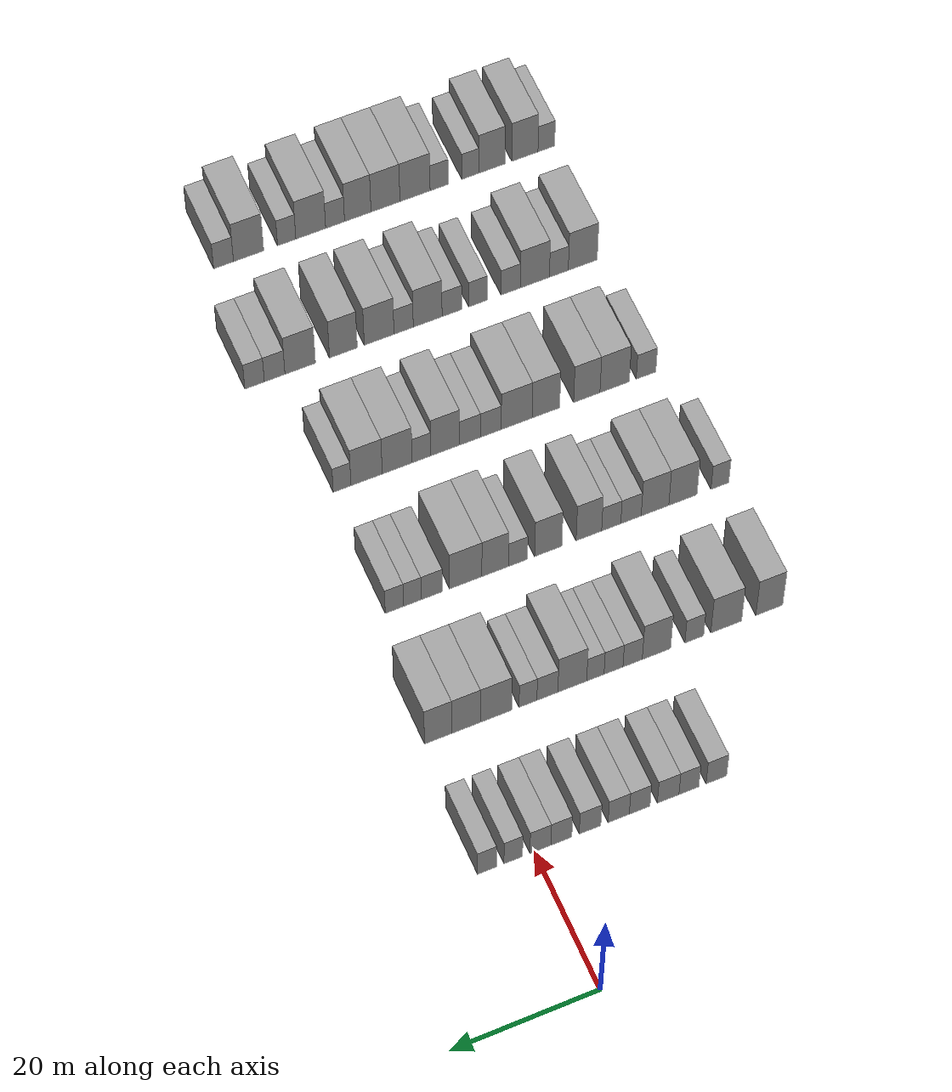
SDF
<sdf version="1.6">
 <world name="default">
  <model name="building_75">
   <static>1</static>
   <pose>25.0000 -24.7141 0 0.000000 0.000000 0.000000</pose>
   <link name="link">
    <pose>0 0 3.00 0 0 0</pose>
    <collision name="collision"><geometry><box><size>10.0000 2.8267 6.0000</size></box></geometry></collision>
    <visual name="visual">
     <cast_shadows>0</cast_shadows>
     <geometry><box><size>10.0000 2.8267 6.0000</size></box></geometry>
     <material>
      <script>
       <uri>model://grey_wall/materials/scripts</uri>
       <uri>model://grey_wall/materials/textures</uri>
       <name>vrc/grey_wall</name>
      </script>
     </material>
    </visual>
   </link>
  </model>
  <model name="building_76">
   <static>1</static>
   <pose>25.0000 -20.9443 0 0.000000 0.000000 0.000000</pose>
   <link name="link">
    <pose>0 0 3.00 0 0 0</pose>
    <collision name="collision"><geometry><box><size>10.0000 2.7129 6.0000</size></box></geometry></collision>
    <visual name="visual">
     <cast_shadows>0</cast_shadows>
     <geometry><box><size>10.0000 2.7129 6.0000</size></box></geometry>
     <material>
      <script>
       <uri>model://grey_wall/materials/scripts</uri>
       <uri>model://grey_wall/materials/textures</uri>
       <name>vrc/grey_wall</name>
      </script>
     </material>
    </visual>
   </link>
  </model>
  <model name="building_77">
   <static>1</static>
   <pose>25.0000 -18.1075 0 0.000000 0.000000 0.000000</pose>
   <link name="link">
    <pose>0 0 3.00 0 0 0</pose>
    <collision name="collision"><geometry><box><size>10.0000 2.9607 6.0000</size></box></geometry></collision>
    <visual name="visual">
     <cast_shadows>0</cast_shadows>
     <geometry><box><size>10.0000 2.9607 6.0000</size></box></geometry>
     <material>
      <script>
       <uri>model://grey_wall/materials/scripts</uri>
       <uri>model://grey_wall/materials/textures</uri>
       <name>vrc/grey_wall</name>
      </script>
     </material>
    </visual>
   </link>
  </model>
  <model name="building_78">
   <static>1</static>
   <pose>25.0000 -14.2135 0 0.000000 0.000000 0.000000</pose>
   <link name="link">
    <pose>0 0 3.00 0 0 0</pose>
    <collision name="collision"><geometry><box><size>10.0000 2.8274 6.0000</size></box></geometry></collision>
    <visual name="visual">
     <cast_shadows>0</cast_shadows>
     <geometry><box><size>10.0000 2.8274 6.0000</size></box></geometry>
     <material>
      <script>
       <uri>model://grey_wall/materials/scripts</uri>
       <uri>model://grey_wall/materials/textures</uri>
       <name>vrc/grey_wall</name>
      </script>
     </material>
    </visual>
   </link>
  </model>
  <model name="building_79">
   <static>1</static>
   <pose>25.0000 -11.3619 0 0.000000 0.000000 0.000000</pose>
   <link name="link">
    <pose>0 0 3.00 0 0 0</pose>
    <collision name="collision"><geometry><box><size>10.0000 2.8756 6.0000</size></box></geometry></collision>
    <visual name="visual">
     <cast_shadows>0</cast_shadows>
     <geometry><box><size>10.0000 2.8756 6.0000</size></box></geometry>
     <material>
      <script>
       <uri>model://grey_wall/materials/scripts</uri>
       <uri>model://grey_wall/materials/textures</uri>
       <name>vrc/grey_wall</name>
      </script>
     </material>
    </visual>
   </link>
  </model>
  <model name="building_80">
   <static>1</static>
   <pose>25.0000 -7.4598 0 0.000000 0.000000 0.000000</pose>
   <link name="link">
    <pose>0 0 3.00 0 0 0</pose>
    <collision name="collision"><geometry><box><size>10.0000 2.9285 6.0000</size></box></geometry></collision>
    <visual name="visual">
     <cast_shadows>0</cast_shadows>
     <geometry><box><size>10.0000 2.9285 6.0000</size></box></geometry>
     <material>
      <script>
       <uri>model://grey_wall/materials/scripts</uri>
       <uri>model://grey_wall/materials/textures</uri>
       <name>vrc/grey_wall</name>
      </script>
     </material>
    </visual>
   </link>
  </model>
  <model name="building_81">
   <static>1</static>
   <pose>25.0000 -3.5816 0 0.000000 0.000000 0.000000</pose>
   <link name="link">
    <pose>0 0 3.00 0 0 0</pose>
    <collision name="collision"><geometry><box><size>10.0000 2.8280 6.0000</size></box></geometry></collision>
    <visual name="visual">
     <cast_shadows>0</cast_shadows>
     <geometry><box><size>10.0000 2.8280 6.0000</size></box></geometry>
     <material>
      <script>
       <uri>model://grey_wall/materials/scripts</uri>
       <uri>model://grey_wall/materials/textures</uri>
       <name>vrc/grey_wall</name>
      </script>
     </material>
    </visual>
   </link>
  </model>
  <model name="building_82">
   <static>1</static>
   <pose>25.0000 -0.7531 0 0.000000 0.000000 0.000000</pose>
   <link name="link">
    <pose>0 0 3.00 0 0 0</pose>
    <collision name="collision"><geometry><box><size>10.0000 2.8289 6.0000</size></box></geometry></collision>
    <visual name="visual">
     <cast_shadows>0</cast_shadows>
     <geometry><box><size>10.0000 2.8289 6.0000</size></box></geometry>
     <material>
      <script>
       <uri>model://grey_wall/materials/scripts</uri>
       <uri>model://grey_wall/materials/textures</uri>
       <name>vrc/grey_wall</name>
      </script>
     </material>
    </visual>
   </link>
  </model>
  <model name="building_83">
   <static>1</static>
   <pose>25.0000 2.9160 0 0.000000 0.000000 0.000000</pose>
   <link name="link">
    <pose>0 0 3.00 0 0 0</pose>
    <collision name="collision"><geometry><box><size>10.0000 2.5093 6.0000</size></box></geometry></collision>
    <visual name="visual">
     <cast_shadows>0</cast_shadows>
     <geometry><box><size>10.0000 2.5093 6.0000</size></box></geometry>
     <material>
      <script>
       <uri>model://grey_wall/materials/scripts</uri>
       <uri>model://grey_wall/materials/textures</uri>
       <name>vrc/grey_wall</name>
      </script>
     </material>
    </visual>
   </link>
  </model>
  <model name="building_84">
   <static>1</static>
   <pose>25.0000 6.4420 0 0.000000 0.000000 0.000000</pose>
   <link name="link">
    <pose>0 0 3.00 0 0 0</pose>
    <collision name="collision"><geometry><box><size>10.0000 2.5426 6.0000</size></box></geometry></collision>
    <visual name="visual">
     <cast_shadows>0</cast_shadows>
     <geometry><box><size>10.0000 2.5426 6.0000</size></box></geometry>
     <material>
      <script>
       <uri>model://grey_wall/materials/scripts</uri>
       <uri>model://grey_wall/materials/textures</uri>
       <name>vrc/grey_wall</name>
      </script>
     </material>
    </visual>
   </link>
  </model>
  <model name="building_251">
   <static>1</static>
   <pose>44.0000 -40.9988 0 0.000000 0.000000 0.000000</pose>
   <link name="link">
    <pose>0 0 4.50 0 0 0</pose>
    <collision name="collision"><geometry><box><size>10.0000 3.7809 9.0000</size></box></geometry></collision>
    <visual name="visual">
     <cast_shadows>0</cast_shadows>
     <geometry><box><size>10.0000 3.7809 9.0000</size></box></geometry>
     <material>
      <script>
       <uri>model://grey_wall/materials/scripts</uri>
       <uri>model://grey_wall/materials/textures</uri>
       <name>vrc/grey_wall</name>
      </script>
     </material>
    </visual>
   </link>
  </model>
  <model name="building_252">
   <static>1</static>
   <pose>44.0000 -34.9463 0 0.000000 0.000000 0.000000</pose>
   <link name="link">
    <pose>0 0 4.50 0 0 0</pose>
    <collision name="collision"><geometry><box><size>10.0000 4.3242 9.0000</size></box></geometry></collision>
    <visual name="visual">
     <cast_shadows>0</cast_shadows>
     <geometry><box><size>10.0000 4.3242 9.0000</size></box></geometry>
     <material>
      <script>
       <uri>model://grey_wall/materials/scripts</uri>
       <uri>model://grey_wall/materials/textures</uri>
       <name>vrc/grey_wall</name>
      </script>
     </material>
    </visual>
   </link>
  </model>
  <model name="building_253">
   <static>1</static>
   <pose>44.0000 -30.4760 0 0.000000 0.000000 0.000000</pose>
   <link name="link">
    <pose>0 0 3.00 0 0 0</pose>
    <collision name="collision"><geometry><box><size>10.0000 2.6163 6.0000</size></box></geometry></collision>
    <visual name="visual">
     <cast_shadows>0</cast_shadows>
     <geometry><box><size>10.0000 2.6163 6.0000</size></box></geometry>
     <material>
      <script>
       <uri>model://grey_wall/materials/scripts</uri>
       <uri>model://grey_wall/materials/textures</uri>
       <name>vrc/grey_wall</name>
      </script>
     </material>
    </visual>
   </link>
  </model>
  <model name="building_254">
   <static>1</static>
   <pose>44.0000 -25.1938 0 0.000000 0.000000 0.000000</pose>
   <link name="link">
    <pose>0 0 4.50 0 0 0</pose>
    <collision name="collision"><geometry><box><size>10.0000 3.9481 9.0000</size></box></geometry></collision>
    <visual name="visual">
     <cast_shadows>0</cast_shadows>
     <geometry><box><size>10.0000 3.9481 9.0000</size></box></geometry>
     <material>
      <script>
       <uri>model://grey_wall/materials/scripts</uri>
       <uri>model://grey_wall/materials/textures</uri>
       <name>vrc/grey_wall</name>
      </script>
     </material>
    </visual>
   </link>
  </model>
  <model name="building_255">
   <static>1</static>
   <pose>44.0000 -21.8793 0 0.000000 0.000000 0.000000</pose>
   <link name="link">
    <pose>0 0 3.00 0 0 0</pose>
    <collision name="collision"><geometry><box><size>10.0000 2.6810 6.0000</size></box></geometry></collision>
    <visual name="visual">
     <cast_shadows>0</cast_shadows>
     <geometry><box><size>10.0000 2.6810 6.0000</size></box></geometry>
     <material>
      <script>
       <uri>model://grey_wall/materials/scripts</uri>
       <uri>model://grey_wall/materials/textures</uri>
       <name>vrc/grey_wall</name>
      </script>
     </material>
    </visual>
   </link>
  </model>
  <model name="building_256">
   <static>1</static>
   <pose>44.0000 -19.2261 0 0.000000 0.000000 0.000000</pose>
   <link name="link">
    <pose>0 0 3.00 0 0 0</pose>
    <collision name="collision"><geometry><box><size>10.0000 2.6255 6.0000</size></box></geometry></collision>
    <visual name="visual">
     <cast_shadows>0</cast_shadows>
     <geometry><box><size>10.0000 2.6255 6.0000</size></box></geometry>
     <material>
      <script>
       <uri>model://grey_wall/materials/scripts</uri>
       <uri>model://grey_wall/materials/textures</uri>
       <name>vrc/grey_wall</name>
      </script>
     </material>
    </visual>
   </link>
  </model>
  <model name="building_257">
   <static>1</static>
   <pose>44.0000 -16.7119 0 0.000000 0.000000 0.000000</pose>
   <link name="link">
    <pose>0 0 3.00 0 0 0</pose>
    <collision name="collision"><geometry><box><size>10.0000 2.4028 6.0000</size></box></geometry></collision>
    <visual name="visual">
     <cast_shadows>0</cast_shadows>
     <geometry><box><size>10.0000 2.4028 6.0000</size></box></geometry>
     <material>
      <script>
       <uri>model://grey_wall/materials/scripts</uri>
       <uri>model://grey_wall/materials/textures</uri>
       <name>vrc/grey_wall</name>
      </script>
     </material>
    </visual>
   </link>
  </model>
  <model name="building_258">
   <static>1</static>
   <pose>44.0000 -13.5210 0 0.000000 0.000000 0.000000</pose>
   <link name="link">
    <pose>0 0 4.50 0 0 0</pose>
    <collision name="collision"><geometry><box><size>10.0000 3.9791 9.0000</size></box></geometry></collision>
    <visual name="visual">
     <cast_shadows>0</cast_shadows>
     <geometry><box><size>10.0000 3.9791 9.0000</size></box></geometry>
     <material>
      <script>
       <uri>model://grey_wall/materials/scripts</uri>
       <uri>model://grey_wall/materials/textures</uri>
       <name>vrc/grey_wall</name>
      </script>
     </material>
    </visual>
   </link>
  </model>
  <model name="building_259">
   <static>1</static>
   <pose>44.0000 -10.0877 0 0.000000 0.000000 0.000000</pose>
   <link name="link">
    <pose>0 0 3.00 0 0 0</pose>
    <collision name="collision"><geometry><box><size>10.0000 2.8873 6.0000</size></box></geometry></collision>
    <visual name="visual">
     <cast_shadows>0</cast_shadows>
     <geometry><box><size>10.0000 2.8873 6.0000</size></box></geometry>
     <material>
      <script>
       <uri>model://grey_wall/materials/scripts</uri>
       <uri>model://grey_wall/materials/textures</uri>
       <name>vrc/grey_wall</name>
      </script>
     </material>
    </visual>
   </link>
  </model>
  <model name="building_260">
   <static>1</static>
   <pose>44.0000 -7.4192 0 0.000000 0.000000 0.000000</pose>
   <link name="link">
    <pose>0 0 3.00 0 0 0</pose>
    <collision name="collision"><geometry><box><size>10.0000 2.4499 6.0000</size></box></geometry></collision>
    <visual name="visual">
     <cast_shadows>0</cast_shadows>
     <geometry><box><size>10.0000 2.4499 6.0000</size></box></geometry>
     <material>
      <script>
       <uri>model://grey_wall/materials/scripts</uri>
       <uri>model://grey_wall/materials/textures</uri>
       <name>vrc/grey_wall</name>
      </script>
     </material>
    </visual>
   </link>
  </model>
  <model name="building_261">
   <static>1</static>
   <pose>44.0000 -3.0409 0 0.000000 0.000000 0.000000</pose>
   <link name="link">
    <pose>0 0 4.50 0 0 0</pose>
    <collision name="collision"><geometry><box><size>10.0000 4.3067 9.0000</size></box></geometry></collision>
    <visual name="visual">
     <cast_shadows>0</cast_shadows>
     <geometry><box><size>10.0000 4.3067 9.0000</size></box></geometry>
     <material>
      <script>
       <uri>model://grey_wall/materials/scripts</uri>
       <uri>model://grey_wall/materials/textures</uri>
       <name>vrc/grey_wall</name>
      </script>
     </material>
    </visual>
   </link>
  </model>
  <model name="building_262">
   <static>1</static>
   <pose>44.0000 1.0598 0 0.000000 0.000000 0.000000</pose>
   <link name="link">
    <pose>0 0 4.50 0 0 0</pose>
    <collision name="collision"><geometry><box><size>10.0000 3.8946 9.0000</size></box></geometry></collision>
    <visual name="visual">
     <cast_shadows>0</cast_shadows>
     <geometry><box><size>10.0000 3.8946 9.0000</size></box></geometry>
     <material>
      <script>
       <uri>model://grey_wall/materials/scripts</uri>
       <uri>model://grey_wall/materials/textures</uri>
       <name>vrc/grey_wall</name>
      </script>
     </material>
    </visual>
   </link>
  </model>
  <model name="building_263">
   <static>1</static>
   <pose>44.0000 4.8701 0 0.000000 0.000000 0.000000</pose>
   <link name="link">
    <pose>0 0 4.50 0 0 0</pose>
    <collision name="collision"><geometry><box><size>10.0000 3.7260 9.0000</size></box></geometry></collision>
    <visual name="visual">
     <cast_shadows>0</cast_shadows>
     <geometry><box><size>10.0000 3.7260 9.0000</size></box></geometry>
     <material>
      <script>
       <uri>model://grey_wall/materials/scripts</uri>
       <uri>model://grey_wall/materials/textures</uri>
       <name>vrc/grey_wall</name>
      </script>
     </material>
    </visual>
   </link>
  </model>
  <model name="building_420">
   <static>1</static>
   <pose>63.0000 -42.9195 0 0.000000 0.000000 0.000000</pose>
   <link name="link">
    <pose>0 0 3.00 0 0 0</pose>
    <collision name="collision"><geometry><box><size>10.0000 2.5342 6.0000</size></box></geometry></collision>
    <visual name="visual">
     <cast_shadows>0</cast_shadows>
     <geometry><box><size>10.0000 2.5342 6.0000</size></box></geometry>
     <material>
      <script>
       <uri>model://grey_wall/materials/scripts</uri>
       <uri>model://grey_wall/materials/textures</uri>
       <name>vrc/grey_wall</name>
      </script>
     </material>
    </visual>
   </link>
  </model>
  <model name="building_421">
   <static>1</static>
   <pose>63.0000 -37.6468 0 0.000000 0.000000 0.000000</pose>
   <link name="link">
    <pose>0 0 4.50 0 0 0</pose>
    <collision name="collision"><geometry><box><size>10.0000 4.0112 9.0000</size></box></geometry></collision>
    <visual name="visual">
     <cast_shadows>0</cast_shadows>
     <geometry><box><size>10.0000 4.0112 9.0000</size></box></geometry>
     <material>
      <script>
       <uri>model://grey_wall/materials/scripts</uri>
       <uri>model://grey_wall/materials/textures</uri>
       <name>vrc/grey_wall</name>
      </script>
     </material>
    </visual>
   </link>
  </model>
  <model name="building_422">
   <static>1</static>
   <pose>63.0000 -33.6801 0 0.000000 0.000000 0.000000</pose>
   <link name="link">
    <pose>0 0 4.50 0 0 0</pose>
    <collision name="collision"><geometry><box><size>10.0000 3.9223 9.0000</size></box></geometry></collision>
    <visual name="visual">
     <cast_shadows>0</cast_shadows>
     <geometry><box><size>10.0000 3.9223 9.0000</size></box></geometry>
     <material>
      <script>
       <uri>model://grey_wall/materials/scripts</uri>
       <uri>model://grey_wall/materials/textures</uri>
       <name>vrc/grey_wall</name>
      </script>
     </material>
    </visual>
   </link>
  </model>
  <model name="building_423">
   <static>1</static>
   <pose>63.0000 -30.2745 0 0.000000 0.000000 0.000000</pose>
   <link name="link">
    <pose>0 0 3.00 0 0 0</pose>
    <collision name="collision"><geometry><box><size>10.0000 2.8890 6.0000</size></box></geometry></collision>
    <visual name="visual">
     <cast_shadows>0</cast_shadows>
     <geometry><box><size>10.0000 2.8890 6.0000</size></box></geometry>
     <material>
      <script>
       <uri>model://grey_wall/materials/scripts</uri>
       <uri>model://grey_wall/materials/textures</uri>
       <name>vrc/grey_wall</name>
      </script>
     </material>
    </visual>
   </link>
  </model>
  <model name="building_424">
   <static>1</static>
   <pose>63.0000 -27.4767 0 0.000000 0.000000 0.000000</pose>
   <link name="link">
    <pose>0 0 3.00 0 0 0</pose>
    <collision name="collision"><geometry><box><size>10.0000 2.7066 6.0000</size></box></geometry></collision>
    <visual name="visual">
     <cast_shadows>0</cast_shadows>
     <geometry><box><size>10.0000 2.7066 6.0000</size></box></geometry>
     <material>
      <script>
       <uri>model://grey_wall/materials/scripts</uri>
       <uri>model://grey_wall/materials/textures</uri>
       <name>vrc/grey_wall</name>
      </script>
     </material>
    </visual>
   </link>
  </model>
  <model name="building_425">
   <static>1</static>
   <pose>63.0000 -24.3222 0 0.000000 0.000000 0.000000</pose>
   <link name="link">
    <pose>0 0 4.50 0 0 0</pose>
    <collision name="collision"><geometry><box><size>10.0000 3.6024 9.0000</size></box></geometry></collision>
    <visual name="visual">
     <cast_shadows>0</cast_shadows>
     <geometry><box><size>10.0000 3.6024 9.0000</size></box></geometry>
     <material>
      <script>
       <uri>model://grey_wall/materials/scripts</uri>
       <uri>model://grey_wall/materials/textures</uri>
       <name>vrc/grey_wall</name>
      </script>
     </material>
    </visual>
   </link>
  </model>
  <model name="building_426">
   <static>1</static>
   <pose>63.0000 -18.6129 0 0.000000 0.000000 0.000000</pose>
   <link name="link">
    <pose>0 0 4.50 0 0 0</pose>
    <collision name="collision"><geometry><box><size>10.0000 3.8162 9.0000</size></box></geometry></collision>
    <visual name="visual">
     <cast_shadows>0</cast_shadows>
     <geometry><box><size>10.0000 3.8162 9.0000</size></box></geometry>
     <material>
      <script>
       <uri>model://grey_wall/materials/scripts</uri>
       <uri>model://grey_wall/materials/textures</uri>
       <name>vrc/grey_wall</name>
      </script>
     </material>
    </visual>
   </link>
  </model>
  <model name="building_427">
   <static>1</static>
   <pose>63.0000 -14.3677 0 0.000000 0.000000 0.000000</pose>
   <link name="link">
    <pose>0 0 3.00 0 0 0</pose>
    <collision name="collision"><geometry><box><size>10.0000 2.6742 6.0000</size></box></geometry></collision>
    <visual name="visual">
     <cast_shadows>0</cast_shadows>
     <geometry><box><size>10.0000 2.6742 6.0000</size></box></geometry>
     <material>
      <script>
       <uri>model://grey_wall/materials/scripts</uri>
       <uri>model://grey_wall/materials/textures</uri>
       <name>vrc/grey_wall</name>
      </script>
     </material>
    </visual>
   </link>
  </model>
  <model name="building_428">
   <static>1</static>
   <pose>63.0000 -11.1765 0 0.000000 0.000000 0.000000</pose>
   <link name="link">
    <pose>0 0 4.50 0 0 0</pose>
    <collision name="collision"><geometry><box><size>10.0000 3.7081 9.0000</size></box></geometry></collision>
    <visual name="visual">
     <cast_shadows>0</cast_shadows>
     <geometry><box><size>10.0000 3.7081 9.0000</size></box></geometry>
     <material>
      <script>
       <uri>model://grey_wall/materials/scripts</uri>
       <uri>model://grey_wall/materials/textures</uri>
       <name>vrc/grey_wall</name>
      </script>
     </material>
    </visual>
   </link>
  </model>
  <model name="building_429">
   <static>1</static>
   <pose>63.0000 -7.0754 0 0.000000 0.000000 0.000000</pose>
   <link name="link">
    <pose>0 0 4.50 0 0 0</pose>
    <collision name="collision"><geometry><box><size>10.0000 4.4940 9.0000</size></box></geometry></collision>
    <visual name="visual">
     <cast_shadows>0</cast_shadows>
     <geometry><box><size>10.0000 4.4940 9.0000</size></box></geometry>
     <material>
      <script>
       <uri>model://grey_wall/materials/scripts</uri>
       <uri>model://grey_wall/materials/textures</uri>
       <name>vrc/grey_wall</name>
      </script>
     </material>
    </visual>
   </link>
  </model>
  <model name="building_430">
   <static>1</static>
   <pose>63.0000 -2.3630 0 0.000000 0.000000 0.000000</pose>
   <link name="link">
    <pose>0 0 3.00 0 0 0</pose>
    <collision name="collision"><geometry><box><size>10.0000 2.9309 6.0000</size></box></geometry></collision>
    <visual name="visual">
     <cast_shadows>0</cast_shadows>
     <geometry><box><size>10.0000 2.9309 6.0000</size></box></geometry>
     <material>
      <script>
       <uri>model://grey_wall/materials/scripts</uri>
       <uri>model://grey_wall/materials/textures</uri>
       <name>vrc/grey_wall</name>
      </script>
     </material>
    </visual>
   </link>
  </model>
  <model name="building_431">
   <static>1</static>
   <pose>63.0000 0.3204 0 0.000000 0.000000 0.000000</pose>
   <link name="link">
    <pose>0 0 3.00 0 0 0</pose>
    <collision name="collision"><geometry><box><size>10.0000 2.4359 6.0000</size></box></geometry></collision>
    <visual name="visual">
     <cast_shadows>0</cast_shadows>
     <geometry><box><size>10.0000 2.4359 6.0000</size></box></geometry>
     <material>
      <script>
       <uri>model://grey_wall/materials/scripts</uri>
       <uri>model://grey_wall/materials/textures</uri>
       <name>vrc/grey_wall</name>
      </script>
     </material>
    </visual>
   </link>
  </model>
  <model name="building_432">
   <static>1</static>
   <pose>63.0000 2.8128 0 0.000000 0.000000 0.000000</pose>
   <link name="link">
    <pose>0 0 3.00 0 0 0</pose>
    <collision name="collision"><geometry><box><size>10.0000 2.5489 6.0000</size></box></geometry></collision>
    <visual name="visual">
     <cast_shadows>0</cast_shadows>
     <geometry><box><size>10.0000 2.5489 6.0000</size></box></geometry>
     <material>
      <script>
       <uri>model://grey_wall/materials/scripts</uri>
       <uri>model://grey_wall/materials/textures</uri>
       <name>vrc/grey_wall</name>
      </script>
     </material>
    </visual>
   </link>
  </model>
  <model name="building_588">
   <static>1</static>
   <pose>82.0000 -41.0707 0 0.000000 0.000000 0.000000</pose>
   <link name="link">
    <pose>0 0 3.00 0 0 0</pose>
    <collision name="collision"><geometry><box><size>10.0000 2.8318 6.0000</size></box></geometry></collision>
    <visual name="visual">
     <cast_shadows>0</cast_shadows>
     <geometry><box><size>10.0000 2.8318 6.0000</size></box></geometry>
     <material>
      <script>
       <uri>model://grey_wall/materials/scripts</uri>
       <uri>model://grey_wall/materials/textures</uri>
       <name>vrc/grey_wall</name>
      </script>
     </material>
    </visual>
   </link>
  </model>
  <model name="building_589">
   <static>1</static>
   <pose>82.0000 -36.5404 0 0.000000 0.000000 0.000000</pose>
   <link name="link">
    <pose>0 0 4.50 0 0 0</pose>
    <collision name="collision"><geometry><box><size>10.0000 4.2289 9.0000</size></box></geometry></collision>
    <visual name="visual">
     <cast_shadows>0</cast_shadows>
     <geometry><box><size>10.0000 4.2289 9.0000</size></box></geometry>
     <material>
      <script>
       <uri>model://grey_wall/materials/scripts</uri>
       <uri>model://grey_wall/materials/textures</uri>
       <name>vrc/grey_wall</name>
      </script>
     </material>
    </visual>
   </link>
  </model>
  <model name="building_590">
   <static>1</static>
   <pose>82.0000 -32.5354 0 0.000000 0.000000 0.000000</pose>
   <link name="link">
    <pose>0 0 4.50 0 0 0</pose>
    <collision name="collision"><geometry><box><size>10.0000 3.7810 9.0000</size></box></geometry></collision>
    <visual name="visual">
     <cast_shadows>0</cast_shadows>
     <geometry><box><size>10.0000 3.7810 9.0000</size></box></geometry>
     <material>
      <script>
       <uri>model://grey_wall/materials/scripts</uri>
       <uri>model://grey_wall/materials/textures</uri>
       <name>vrc/grey_wall</name>
      </script>
     </material>
    </visual>
   </link>
  </model>
  <model name="building_591">
   <static>1</static>
   <pose>82.0000 -26.6767 0 0.000000 0.000000 0.000000</pose>
   <link name="link">
    <pose>0 0 4.50 0 0 0</pose>
    <collision name="collision"><geometry><box><size>10.0000 3.9365 9.0000</size></box></geometry></collision>
    <visual name="visual">
     <cast_shadows>0</cast_shadows>
     <geometry><box><size>10.0000 3.9365 9.0000</size></box></geometry>
     <material>
      <script>
       <uri>model://grey_wall/materials/scripts</uri>
       <uri>model://grey_wall/materials/textures</uri>
       <name>vrc/grey_wall</name>
      </script>
     </material>
    </visual>
   </link>
  </model>
  <model name="building_592">
   <static>1</static>
   <pose>82.0000 -22.5048 0 0.000000 0.000000 0.000000</pose>
   <link name="link">
    <pose>0 0 4.50 0 0 0</pose>
    <collision name="collision"><geometry><box><size>10.0000 4.4073 9.0000</size></box></geometry></collision>
    <visual name="visual">
     <cast_shadows>0</cast_shadows>
     <geometry><box><size>10.0000 4.4073 9.0000</size></box></geometry>
     <material>
      <script>
       <uri>model://grey_wall/materials/scripts</uri>
       <uri>model://grey_wall/materials/textures</uri>
       <name>vrc/grey_wall</name>
      </script>
     </material>
    </visual>
   </link>
  </model>
  <model name="building_593">
   <static>1</static>
   <pose>82.0000 -18.8313 0 0.000000 0.000000 0.000000</pose>
   <link name="link">
    <pose>0 0 3.00 0 0 0</pose>
    <collision name="collision"><geometry><box><size>10.0000 2.9397 6.0000</size></box></geometry></collision>
    <visual name="visual">
     <cast_shadows>0</cast_shadows>
     <geometry><box><size>10.0000 2.9397 6.0000</size></box></geometry>
     <material>
      <script>
       <uri>model://grey_wall/materials/scripts</uri>
       <uri>model://grey_wall/materials/textures</uri>
       <name>vrc/grey_wall</name>
      </script>
     </material>
    </visual>
   </link>
  </model>
  <model name="building_594">
   <static>1</static>
   <pose>82.0000 -15.8744 0 0.000000 0.000000 0.000000</pose>
   <link name="link">
    <pose>0 0 3.00 0 0 0</pose>
    <collision name="collision"><geometry><box><size>10.0000 2.9740 6.0000</size></box></geometry></collision>
    <visual name="visual">
     <cast_shadows>0</cast_shadows>
     <geometry><box><size>10.0000 2.9740 6.0000</size></box></geometry>
     <material>
      <script>
       <uri>model://grey_wall/materials/scripts</uri>
       <uri>model://grey_wall/materials/textures</uri>
       <name>vrc/grey_wall</name>
      </script>
     </material>
    </visual>
   </link>
  </model>
  <model name="building_595">
   <static>1</static>
   <pose>82.0000 -12.3492 0 0.000000 0.000000 0.000000</pose>
   <link name="link">
    <pose>0 0 4.50 0 0 0</pose>
    <collision name="collision"><geometry><box><size>10.0000 4.0764 9.0000</size></box></geometry></collision>
    <visual name="visual">
     <cast_shadows>0</cast_shadows>
     <geometry><box><size>10.0000 4.0764 9.0000</size></box></geometry>
     <material>
      <script>
       <uri>model://grey_wall/materials/scripts</uri>
       <uri>model://grey_wall/materials/textures</uri>
       <name>vrc/grey_wall</name>
      </script>
     </material>
    </visual>
   </link>
  </model>
  <model name="building_596">
   <static>1</static>
   <pose>82.0000 -8.9935 0 0.000000 0.000000 0.000000</pose>
   <link name="link">
    <pose>0 0 3.00 0 0 0</pose>
    <collision name="collision"><geometry><box><size>10.0000 2.6350 6.0000</size></box></geometry></collision>
    <visual name="visual">
     <cast_shadows>0</cast_shadows>
     <geometry><box><size>10.0000 2.6350 6.0000</size></box></geometry>
     <material>
      <script>
       <uri>model://grey_wall/materials/scripts</uri>
       <uri>model://grey_wall/materials/textures</uri>
       <name>vrc/grey_wall</name>
      </script>
     </material>
    </visual>
   </link>
  </model>
  <model name="building_597">
   <static>1</static>
   <pose>82.0000 -5.5717 0 0.000000 0.000000 0.000000</pose>
   <link name="link">
    <pose>0 0 4.50 0 0 0</pose>
    <collision name="collision"><geometry><box><size>10.0000 4.2087 9.0000</size></box></geometry></collision>
    <visual name="visual">
     <cast_shadows>0</cast_shadows>
     <geometry><box><size>10.0000 4.2087 9.0000</size></box></geometry>
     <material>
      <script>
       <uri>model://grey_wall/materials/scripts</uri>
       <uri>model://grey_wall/materials/textures</uri>
       <name>vrc/grey_wall</name>
      </script>
     </material>
    </visual>
   </link>
  </model>
  <model name="building_598">
   <static>1</static>
   <pose>82.0000 -1.2708 0 0.000000 0.000000 0.000000</pose>
   <link name="link">
    <pose>0 0 4.50 0 0 0</pose>
    <collision name="collision"><geometry><box><size>10.0000 4.3931 9.0000</size></box></geometry></collision>
    <visual name="visual">
     <cast_shadows>0</cast_shadows>
     <geometry><box><size>10.0000 4.3931 9.0000</size></box></geometry>
     <material>
      <script>
       <uri>model://grey_wall/materials/scripts</uri>
       <uri>model://grey_wall/materials/textures</uri>
       <name>vrc/grey_wall</name>
      </script>
     </material>
    </visual>
   </link>
  </model>
  <model name="building_599">
   <static>1</static>
   <pose>82.0000 2.1687 0 0.000000 0.000000 0.000000</pose>
   <link name="link">
    <pose>0 0 3.00 0 0 0</pose>
    <collision name="collision"><geometry><box><size>10.0000 2.4858 6.0000</size></box></geometry></collision>
    <visual name="visual">
     <cast_shadows>0</cast_shadows>
     <geometry><box><size>10.0000 2.4858 6.0000</size></box></geometry>
     <material>
      <script>
       <uri>model://grey_wall/materials/scripts</uri>
       <uri>model://grey_wall/materials/textures</uri>
       <name>vrc/grey_wall</name>
      </script>
     </material>
    </visual>
   </link>
  </model>
  <model name="building_764">
   <static>1</static>
   <pose>101.0000 -40.4476 0 0.000000 0.000000 0.000000</pose>
   <link name="link">
    <pose>0 0 4.50 0 0 0</pose>
    <collision name="collision"><geometry><box><size>10.0000 4.2233 9.0000</size></box></geometry></collision>
    <visual name="visual">
     <cast_shadows>0</cast_shadows>
     <geometry><box><size>10.0000 4.2233 9.0000</size></box></geometry>
     <material>
      <script>
       <uri>model://grey_wall/materials/scripts</uri>
       <uri>model://grey_wall/materials/textures</uri>
       <name>vrc/grey_wall</name>
      </script>
     </material>
    </visual>
   </link>
  </model>
  <model name="building_765">
   <static>1</static>
   <pose>101.0000 -36.9584 0 0.000000 0.000000 0.000000</pose>
   <link name="link">
    <pose>0 0 3.00 0 0 0</pose>
    <collision name="collision"><geometry><box><size>10.0000 2.7552 6.0000</size></box></geometry></collision>
    <visual name="visual">
     <cast_shadows>0</cast_shadows>
     <geometry><box><size>10.0000 2.7552 6.0000</size></box></geometry>
     <material>
      <script>
       <uri>model://grey_wall/materials/scripts</uri>
       <uri>model://grey_wall/materials/textures</uri>
       <name>vrc/grey_wall</name>
      </script>
     </material>
    </visual>
   </link>
  </model>
  <model name="building_766">
   <static>1</static>
   <pose>101.0000 -33.4723 0 0.000000 0.000000 0.000000</pose>
   <link name="link">
    <pose>0 0 4.50 0 0 0</pose>
    <collision name="collision"><geometry><box><size>10.0000 4.2169 9.0000</size></box></geometry></collision>
    <visual name="visual">
     <cast_shadows>0</cast_shadows>
     <geometry><box><size>10.0000 4.2169 9.0000</size></box></geometry>
     <material>
      <script>
       <uri>model://grey_wall/materials/scripts</uri>
       <uri>model://grey_wall/materials/textures</uri>
       <name>vrc/grey_wall</name>
      </script>
     </material>
    </visual>
   </link>
  </model>
  <model name="building_767">
   <static>1</static>
   <pose>101.0000 -29.9541 0 0.000000 0.000000 0.000000</pose>
   <link name="link">
    <pose>0 0 3.00 0 0 0</pose>
    <collision name="collision"><geometry><box><size>10.0000 2.8195 6.0000</size></box></geometry></collision>
    <visual name="visual">
     <cast_shadows>0</cast_shadows>
     <geometry><box><size>10.0000 2.8195 6.0000</size></box></geometry>
     <material>
      <script>
       <uri>model://grey_wall/materials/scripts</uri>
       <uri>model://grey_wall/materials/textures</uri>
       <name>vrc/grey_wall</name>
      </script>
     </material>
    </visual>
   </link>
  </model>
  <model name="building_768">
   <static>1</static>
   <pose>101.0000 -25.1994 0 0.000000 0.000000 0.000000</pose>
   <link name="link">
    <pose>0 0 3.00 0 0 0</pose>
    <collision name="collision"><geometry><box><size>10.0000 2.6898 6.0000</size></box></geometry></collision>
    <visual name="visual">
     <cast_shadows>0</cast_shadows>
     <geometry><box><size>10.0000 2.6898 6.0000</size></box></geometry>
     <material>
      <script>
       <uri>model://grey_wall/materials/scripts</uri>
       <uri>model://grey_wall/materials/textures</uri>
       <name>vrc/grey_wall</name>
      </script>
     </material>
    </visual>
   </link>
  </model>
  <model name="building_769">
   <static>1</static>
   <pose>101.0000 -21.4416 0 0.000000 0.000000 0.000000</pose>
   <link name="link">
    <pose>0 0 3.00 0 0 0</pose>
    <collision name="collision"><geometry><box><size>10.0000 2.8259 6.0000</size></box></geometry></collision>
    <visual name="visual">
     <cast_shadows>0</cast_shadows>
     <geometry><box><size>10.0000 2.8259 6.0000</size></box></geometry>
     <material>
      <script>
       <uri>model://grey_wall/materials/scripts</uri>
       <uri>model://grey_wall/materials/textures</uri>
       <name>vrc/grey_wall</name>
      </script>
     </material>
    </visual>
   </link>
  </model>
  <model name="building_770">
   <static>1</static>
   <pose>101.0000 -17.9550 0 0.000000 0.000000 0.000000</pose>
   <link name="link">
    <pose>0 0 4.50 0 0 0</pose>
    <collision name="collision"><geometry><box><size>10.0000 4.1472 9.0000</size></box></geometry></collision>
    <visual name="visual">
     <cast_shadows>0</cast_shadows>
     <geometry><box><size>10.0000 4.1472 9.0000</size></box></geometry>
     <material>
      <script>
       <uri>model://grey_wall/materials/scripts</uri>
       <uri>model://grey_wall/materials/textures</uri>
       <name>vrc/grey_wall</name>
      </script>
     </material>
    </visual>
   </link>
  </model>
  <model name="building_771">
   <static>1</static>
   <pose>101.0000 -14.4968 0 0.000000 0.000000 0.000000</pose>
   <link name="link">
    <pose>0 0 3.00 0 0 0</pose>
    <collision name="collision"><geometry><box><size>10.0000 2.7692 6.0000</size></box></geometry></collision>
    <visual name="visual">
     <cast_shadows>0</cast_shadows>
     <geometry><box><size>10.0000 2.7692 6.0000</size></box></geometry>
     <material>
      <script>
       <uri>model://grey_wall/materials/scripts</uri>
       <uri>model://grey_wall/materials/textures</uri>
       <name>vrc/grey_wall</name>
      </script>
     </material>
    </visual>
   </link>
  </model>
  <model name="building_772">
   <static>1</static>
   <pose>101.0000 -10.9852 0 0.000000 0.000000 0.000000</pose>
   <link name="link">
    <pose>0 0 4.50 0 0 0</pose>
    <collision name="collision"><geometry><box><size>10.0000 4.2542 9.0000</size></box></geometry></collision>
    <visual name="visual">
     <cast_shadows>0</cast_shadows>
     <geometry><box><size>10.0000 4.2542 9.0000</size></box></geometry>
     <material>
      <script>
       <uri>model://grey_wall/materials/scripts</uri>
       <uri>model://grey_wall/materials/textures</uri>
       <name>vrc/grey_wall</name>
      </script>
     </material>
    </visual>
   </link>
  </model>
  <model name="building_773">
   <static>1</static>
   <pose>101.0000 -5.8746 0 0.000000 0.000000 0.000000</pose>
   <link name="link">
    <pose>0 0 4.50 0 0 0</pose>
    <collision name="collision"><geometry><box><size>10.0000 3.9669 9.0000</size></box></geometry></collision>
    <visual name="visual">
     <cast_shadows>0</cast_shadows>
     <geometry><box><size>10.0000 3.9669 9.0000</size></box></geometry>
     <material>
      <script>
       <uri>model://grey_wall/materials/scripts</uri>
       <uri>model://grey_wall/materials/textures</uri>
       <name>vrc/grey_wall</name>
      </script>
     </material>
    </visual>
   </link>
  </model>
  <model name="building_774">
   <static>1</static>
   <pose>101.0000 0.2734 0 0.000000 0.000000 0.000000</pose>
   <link name="link">
    <pose>0 0 4.50 0 0 0</pose>
    <collision name="collision"><geometry><box><size>10.0000 4.3292 9.0000</size></box></geometry></collision>
    <visual name="visual">
     <cast_shadows>0</cast_shadows>
     <geometry><box><size>10.0000 4.3292 9.0000</size></box></geometry>
     <material>
      <script>
       <uri>model://grey_wall/materials/scripts</uri>
       <uri>model://grey_wall/materials/textures</uri>
       <name>vrc/grey_wall</name>
      </script>
     </material>
    </visual>
   </link>
  </model>
  <model name="building_775">
   <static>1</static>
   <pose>101.0000 3.8981 0 0.000000 0.000000 0.000000</pose>
   <link name="link">
    <pose>0 0 3.00 0 0 0</pose>
    <collision name="collision"><geometry><box><size>10.0000 2.9202 6.0000</size></box></geometry></collision>
    <visual name="visual">
     <cast_shadows>0</cast_shadows>
     <geometry><box><size>10.0000 2.9202 6.0000</size></box></geometry>
     <material>
      <script>
       <uri>model://grey_wall/materials/scripts</uri>
       <uri>model://grey_wall/materials/textures</uri>
       <name>vrc/grey_wall</name>
      </script>
     </material>
    </visual>
   </link>
  </model>
  <model name="building_776">
   <static>1</static>
   <pose>101.0000 6.7428 0 0.000000 0.000000 0.000000</pose>
   <link name="link">
    <pose>0 0 3.00 0 0 0</pose>
    <collision name="collision"><geometry><box><size>10.0000 2.7690 6.0000</size></box></geometry></collision>
    <visual name="visual">
     <cast_shadows>0</cast_shadows>
     <geometry><box><size>10.0000 2.7690 6.0000</size></box></geometry>
     <material>
      <script>
       <uri>model://grey_wall/materials/scripts</uri>
       <uri>model://grey_wall/materials/textures</uri>
       <name>vrc/grey_wall</name>
      </script>
     </material>
    </visual>
   </link>
  </model>
  <model name="building_934">
   <static>1</static>
   <pose>120.0000 -43.5275 0 0.000000 0.000000 0.000000</pose>
   <link name="link">
    <pose>0 0 3.00 0 0 0</pose>
    <collision name="collision"><geometry><box><size>10.0000 2.4731 6.0000</size></box></geometry></collision>
    <visual name="visual">
     <cast_shadows>0</cast_shadows>
     <geometry><box><size>10.0000 2.4731 6.0000</size></box></geometry>
     <material>
      <script>
       <uri>model://grey_wall/materials/scripts</uri>
       <uri>model://grey_wall/materials/textures</uri>
       <name>vrc/grey_wall</name>
      </script>
     </material>
    </visual>
   </link>
  </model>
  <model name="building_935">
   <static>1</static>
   <pose>120.0000 -40.3543 0 0.000000 0.000000 0.000000</pose>
   <link name="link">
    <pose>0 0 4.50 0 0 0</pose>
    <collision name="collision"><geometry><box><size>10.0000 3.8733 9.0000</size></box></geometry></collision>
    <visual name="visual">
     <cast_shadows>0</cast_shadows>
     <geometry><box><size>10.0000 3.8733 9.0000</size></box></geometry>
     <material>
      <script>
       <uri>model://grey_wall/materials/scripts</uri>
       <uri>model://grey_wall/materials/textures</uri>
       <name>vrc/grey_wall</name>
      </script>
     </material>
    </visual>
   </link>
  </model>
  <model name="building_936">
   <static>1</static>
   <pose>120.0000 -35.4752 0 0.000000 0.000000 0.000000</pose>
   <link name="link">
    <pose>0 0 4.50 0 0 0</pose>
    <collision name="collision"><geometry><box><size>10.0000 3.8850 9.0000</size></box></geometry></collision>
    <visual name="visual">
     <cast_shadows>0</cast_shadows>
     <geometry><box><size>10.0000 3.8850 9.0000</size></box></geometry>
     <material>
      <script>
       <uri>model://grey_wall/materials/scripts</uri>
       <uri>model://grey_wall/materials/textures</uri>
       <name>vrc/grey_wall</name>
      </script>
     </material>
    </visual>
   </link>
  </model>
  <model name="building_937">
   <static>1</static>
   <pose>120.0000 -32.2897 0 0.000000 0.000000 0.000000</pose>
   <link name="link">
    <pose>0 0 3.00 0 0 0</pose>
    <collision name="collision"><geometry><box><size>10.0000 2.4861 6.0000</size></box></geometry></collision>
    <visual name="visual">
     <cast_shadows>0</cast_shadows>
     <geometry><box><size>10.0000 2.4861 6.0000</size></box></geometry>
     <material>
      <script>
       <uri>model://grey_wall/materials/scripts</uri>
       <uri>model://grey_wall/materials/textures</uri>
       <name>vrc/grey_wall</name>
      </script>
     </material>
    </visual>
   </link>
  </model>
  <model name="building_938">
   <static>1</static>
   <pose>120.0000 -27.7214 0 0.000000 0.000000 0.000000</pose>
   <link name="link">
    <pose>0 0 3.00 0 0 0</pose>
    <collision name="collision"><geometry><box><size>10.0000 2.6504 6.0000</size></box></geometry></collision>
    <visual name="visual">
     <cast_shadows>0</cast_shadows>
     <geometry><box><size>10.0000 2.6504 6.0000</size></box></geometry>
     <material>
      <script>
       <uri>model://grey_wall/materials/scripts</uri>
       <uri>model://grey_wall/materials/textures</uri>
       <name>vrc/grey_wall</name>
      </script>
     </material>
    </visual>
   </link>
  </model>
  <model name="building_939">
   <static>1</static>
   <pose>120.0000 -24.1859 0 0.000000 0.000000 0.000000</pose>
   <link name="link">
    <pose>0 0 4.50 0 0 0</pose>
    <collision name="collision"><geometry><box><size>10.0000 4.4206 9.0000</size></box></geometry></collision>
    <visual name="visual">
     <cast_shadows>0</cast_shadows>
     <geometry><box><size>10.0000 4.4206 9.0000</size></box></geometry>
     <material>
      <script>
       <uri>model://grey_wall/materials/scripts</uri>
       <uri>model://grey_wall/materials/textures</uri>
       <name>vrc/grey_wall</name>
      </script>
     </material>
    </visual>
   </link>
  </model>
  <model name="building_940">
   <static>1</static>
   <pose>120.0000 -19.8658 0 0.000000 0.000000 0.000000</pose>
   <link name="link">
    <pose>0 0 4.50 0 0 0</pose>
    <collision name="collision"><geometry><box><size>10.0000 4.2197 9.0000</size></box></geometry></collision>
    <visual name="visual">
     <cast_shadows>0</cast_shadows>
     <geometry><box><size>10.0000 4.2197 9.0000</size></box></geometry>
     <material>
      <script>
       <uri>model://grey_wall/materials/scripts</uri>
       <uri>model://grey_wall/materials/textures</uri>
       <name>vrc/grey_wall</name>
      </script>
     </material>
    </visual>
   </link>
  </model>
  <model name="building_941">
   <static>1</static>
   <pose>120.0000 -15.8340 0 0.000000 0.000000 0.000000</pose>
   <link name="link">
    <pose>0 0 4.50 0 0 0</pose>
    <collision name="collision"><geometry><box><size>10.0000 3.8439 9.0000</size></box></geometry></collision>
    <visual name="visual">
     <cast_shadows>0</cast_shadows>
     <geometry><box><size>10.0000 3.8439 9.0000</size></box></geometry>
     <material>
      <script>
       <uri>model://grey_wall/materials/scripts</uri>
       <uri>model://grey_wall/materials/textures</uri>
       <name>vrc/grey_wall</name>
      </script>
     </material>
    </visual>
   </link>
  </model>
  <model name="building_942">
   <static>1</static>
   <pose>120.0000 -12.5387 0 0.000000 0.000000 0.000000</pose>
   <link name="link">
    <pose>0 0 3.00 0 0 0</pose>
    <collision name="collision"><geometry><box><size>10.0000 2.7466 6.0000</size></box></geometry></collision>
    <visual name="visual">
     <cast_shadows>0</cast_shadows>
     <geometry><box><size>10.0000 2.7466 6.0000</size></box></geometry>
     <material>
      <script>
       <uri>model://grey_wall/materials/scripts</uri>
       <uri>model://grey_wall/materials/textures</uri>
       <name>vrc/grey_wall</name>
      </script>
     </material>
    </visual>
   </link>
  </model>
  <model name="building_943">
   <static>1</static>
   <pose>120.0000 -9.0048 0 0.000000 0.000000 0.000000</pose>
   <link name="link">
    <pose>0 0 4.50 0 0 0</pose>
    <collision name="collision"><geometry><box><size>10.0000 4.3213 9.0000</size></box></geometry></collision>
    <visual name="visual">
     <cast_shadows>0</cast_shadows>
     <geometry><box><size>10.0000 4.3213 9.0000</size></box></geometry>
     <material>
      <script>
       <uri>model://grey_wall/materials/scripts</uri>
       <uri>model://grey_wall/materials/textures</uri>
       <name>vrc/grey_wall</name>
      </script>
     </material>
    </visual>
   </link>
  </model>
  <model name="building_944">
   <static>1</static>
   <pose>120.0000 -5.5246 0 0.000000 0.000000 0.000000</pose>
   <link name="link">
    <pose>0 0 3.00 0 0 0</pose>
    <collision name="collision"><geometry><box><size>10.0000 2.6390 6.0000</size></box></geometry></collision>
    <visual name="visual">
     <cast_shadows>0</cast_shadows>
     <geometry><box><size>10.0000 2.6390 6.0000</size></box></geometry>
     <material>
      <script>
       <uri>model://grey_wall/materials/scripts</uri>
       <uri>model://grey_wall/materials/textures</uri>
       <name>vrc/grey_wall</name>
      </script>
     </material>
    </visual>
   </link>
  </model>
  <model name="building_945">
   <static>1</static>
   <pose>120.0000 -0.0310 0 0.000000 0.000000 0.000000</pose>
   <link name="link">
    <pose>0 0 4.50 0 0 0</pose>
    <collision name="collision"><geometry><box><size>10.0000 4.3482 9.0000</size></box></geometry></collision>
    <visual name="visual">
     <cast_shadows>0</cast_shadows>
     <geometry><box><size>10.0000 4.3482 9.0000</size></box></geometry>
     <material>
      <script>
       <uri>model://grey_wall/materials/scripts</uri>
       <uri>model://grey_wall/materials/textures</uri>
       <name>vrc/grey_wall</name>
      </script>
     </material>
    </visual>
   </link>
  </model>
  <model name="building_946">
   <static>1</static>
   <pose>120.0000 3.5674 0 0.000000 0.000000 0.000000</pose>
   <link name="link">
    <pose>0 0 3.00 0 0 0</pose>
    <collision name="collision"><geometry><box><size>10.0000 2.8486 6.0000</size></box></geometry></collision>
    <visual name="visual">
     <cast_shadows>0</cast_shadows>
     <geometry><box><size>10.0000 2.8486 6.0000</size></box></geometry>
     <material>
      <script>
       <uri>model://grey_wall/materials/scripts</uri>
       <uri>model://grey_wall/materials/textures</uri>
       <name>vrc/grey_wall</name>
      </script>
     </material>
    </visual>
   </link>
  </model>
 </world>
</sdf>
